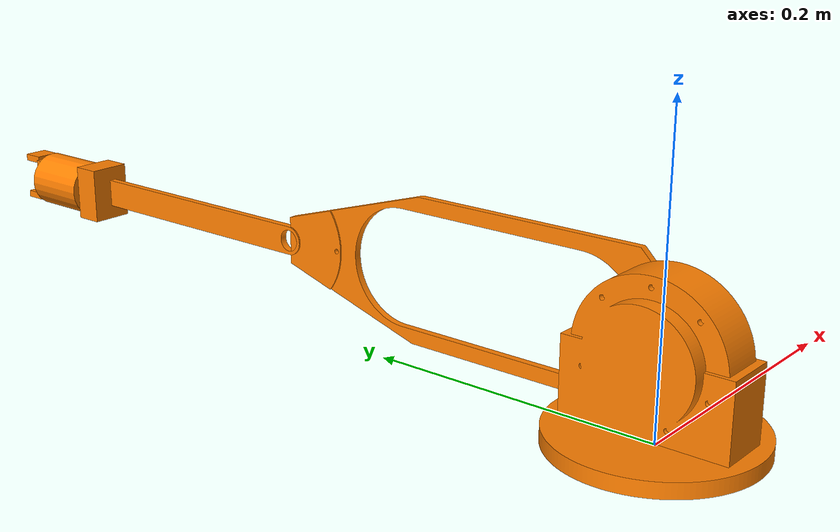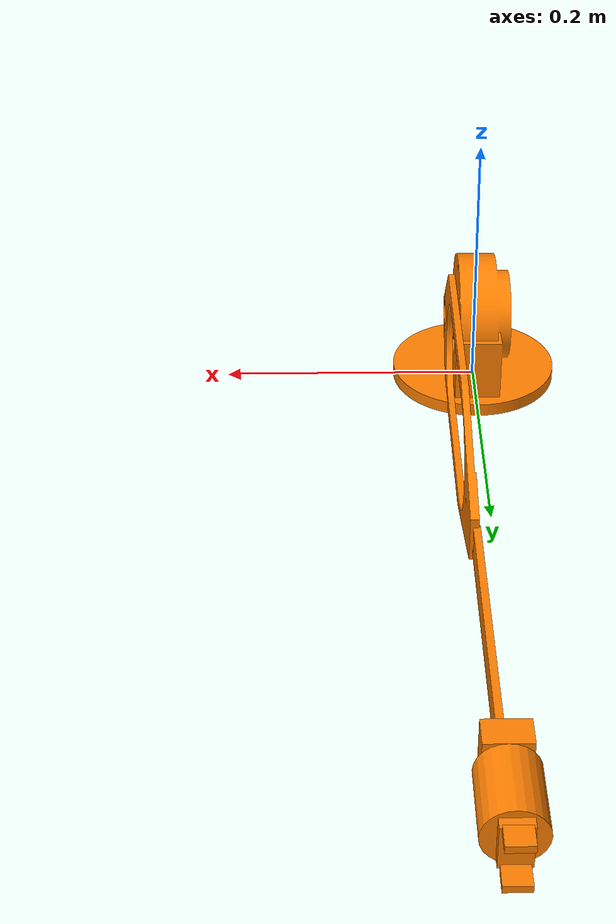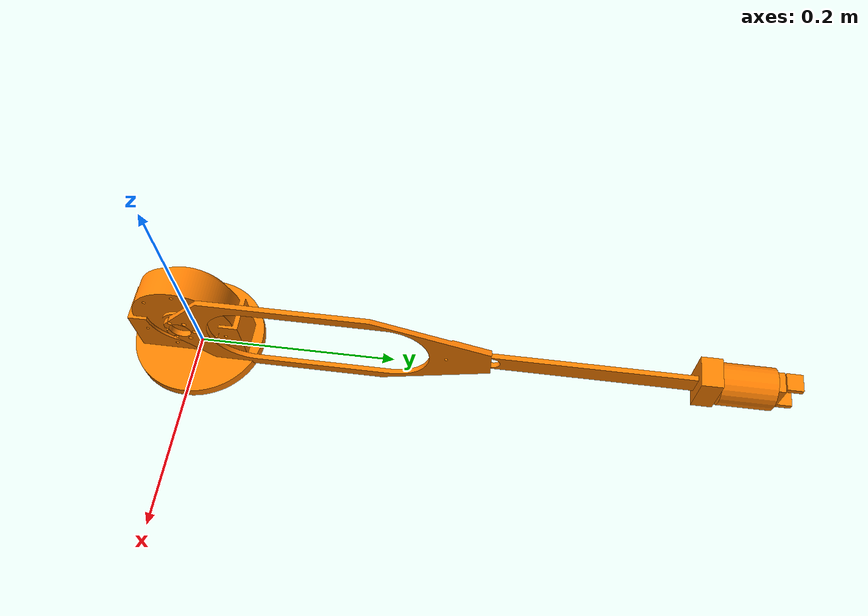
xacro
<?xml version="1.0" encoding="UTF-8"?>
<robot xmlns:xacro="http://www.ros.org/wiki/xacro" name="robot_arm">

  <material name="orange">
    <color rgba="1.0 0.5 0.0 1.0"/>
  </material>

  <link name="world"></link>

  <joint name="base_joint" type="revolute">
    <origin xyz="0 0 0" rpy="0 0 0"/>
    <parent link="world"/>
    <child link="base_link"/>
    <axis xyz="0 0 1"/>
    <limit lower="0" upper="3.14159" effort="100" velocity="0.5"/>
  </joint>

  <link name="base_link">
    <visual>
      <origin xyz="0.0 0.0 0.0" rpy="0.0 0.0 0.0"/>
      <geometry>
        <mesh filename="package://arm_description/meshes/base_link.dae" scale="1.0 1.0 1.0"/>
      </geometry>
      <material name="orange"></material>
    </visual>

    <collision>
      <origin xyz="0 0 0" rpy="0 0 0"/>
      <geometry>
        <mesh filename="package://arm_description/meshes/base_link.dae" scale="1.0 1.0 1.0"/>
      </geometry>

    </collision>

    <inertial>
      <origin xyz="0.0 0.0 0.0" rpy="0.0 0.0 0.0"/>
      <mass value="0.0723"/>
      <inertia ixx="0.01" ixy="0.0" ixz="0.0" iyy="0.01" iyz="0.0" izz="0.01"/>

    </inertial>

  </link>

  <joint name="joint1" type="revolute">
    <origin xyz="0.017 0 0.055" rpy="0 0 0"/>  <!-- Adjust height based on your base -->
    <parent link="base_link"/>
    <child link="link1"/>
    <axis xyz="1 0 0"/>  <!-- Rotation around Z-axis (vertical) -->
    <limit lower="0" upper="1.570796327" effort="100" velocity="1.0"/>

  </joint>

  <link name="link1">
    <visual>
      <origin xyz="0 0 0" rpy="0 0 0"/>  <!-- Position relative to joint -->
      <geometry>
        <mesh filename="package://arm_description/meshes/link_1.dae"/>
      </geometry>
      <material name="orange"/>
    </visual>

    <collision>
      <origin xyz="0 0 0" rpy="0 0 0"/>
      <geometry>
        <mesh filename="package://arm_description/meshes/link_1.dae"/>
      </geometry>
    </collision>

    <inertial>
      <origin xyz="0 0 0" rpy="0 0 0"/>
      <mass value="0.020"/>
      <inertia ixx="0.01" ixy="0" ixz="0" iyy="0.01" iyz="0" izz="0.01"/>
    </inertial>
  </link>

  <joint name="joint2" type="revolute">
    <origin xyz="0 0.3 0" rpy="0 0 0"/>
    <parent link="link1"/>
    <child link="link2"/>
    <axis xyz="1 0 0"/>  <!-- Rotation around Z-axis (vertical) -->
    <limit lower="-2.5" upper="2.5" effort="100" velocity="1.0"/>

  </joint>

  <link name="link2">
    <visual>
      <origin xyz="0 0 0" rpy="0 0 0"/>  <!-- Position relative to joint -->
      <geometry>
        <mesh filename="package://arm_description/meshes/link_2.dae"/>
      </geometry>
      <material name="orange"/>
    </visual>

    <collision>
      <origin xyz="0 0 0" rpy="0 0 0"/>
      <geometry>
        <mesh filename="package://arm_description/meshes/link_2.dae"/>
      </geometry>
    </collision>

    <inertial>
      <origin xyz="0 0 0" rpy="0 0 0"/>
      <mass value="0.020"/>
      <inertia ixx="0.01" ixy="0" ixz="0" iyy="0.01" iyz="0" izz="0.01"/>
    </inertial>
  </link>

  <joint name="wrist_pitch" type="revolute">
    <origin xyz="0 0.2 0" rpy="0 0 0"/>  <!-- At end of link2 -->
    <parent link="link2"/>
    <child link="wrist_pitch_link"/>
    <axis xyz="1 0 0"/>  <!-- Rotation around Y-axis for pitch -->
    <limit lower="-1.57" upper="1.57" effort="50" velocity="2.0"/>
  </joint>

  <!-- Wrist Pitch Link -->
  <link name="wrist_pitch_link">
    <visual>
      <origin xyz="0 0 0" rpy="0 0 0"/>
      <geometry>
        <box size="0.03 0.02 0.04"/>  <!-- Small rectangular housing -->
      </geometry>
      <material name="orange"/>
    </visual>

    <collision>
      <origin xyz="0 0 0" rpy="0 0 0"/>
      <geometry>
        <box size="0.03 0.02 0.04"/>
      </geometry>
    </collision>

    <inertial>
      <origin xyz="0 0 0" rpy="0 0 0"/>
      <mass value="0.1"/>
      <inertia ixx="0.001" ixy="0" ixz="0" iyy="0.001" iyz="0" izz="0.001"/>
    </inertial>
  </link>

    <!-- Wrist Roll Joint -->
  <joint name="wrist_roll" type="revolute">
    <origin xyz="0 0.035  0" rpy="-1.57 0 0"/>  <!-- Forward from wrist pitch -->
    <parent link="wrist_pitch_link"/>
    <child link="wrist_roll_link"/>
    <axis xyz="0 0 1"/>  <!-- Rotation around X-axis for roll -->
    <limit lower="-3.14" upper="3.14" effort="30" velocity="3.0"/>
  </joint>

  <!-- Wrist Roll Link (End Effector Mount) -->
  <link name="wrist_roll_link">
    <visual>
      <origin xyz="0 0 0" rpy="0 0 0"/>  <!-- Rotate to make cylinder along X -->
      <geometry>
        <cylinder radius="0.02" length="0.05"/>  <!-- Small cylinder -->
      </geometry>
      <material name="orange"/>
    </visual>

    <collision>
      <origin xyz="0 0 0" rpy="0 0 0"/>
      <geometry>
        <cylinder radius="0.02" length="0.05"/>
      </geometry>
    </collision>

    <inertial>
      <origin xyz="0 0 0" rpy="0 0 0"/>
      <mass value="0.05"/>
      <inertia ixx="0.0005" ixy="0" ixz="0" iyy="0.0005" iyz="0" izz="0.0005"/>
    </inertial>
  </link>

    <!-- Gripper Base Joint -->
  <joint name="gripper_base_joint" type="fixed">
    <origin xyz="0 0 0" rpy="0 0 0"/>
    <parent link="wrist_roll_link"/>
    <child link="gripper_base"/>
  </joint>

  <!-- Gripper Base Link -->
  <link name="gripper_base">
    <visual>
      <origin xyz="0 0 0.025" rpy="0 0 0"/>
      <geometry>
        <box size="0.02 0.03 0.015"/>
      </geometry>
      <material name="orange"/>
    </visual>
    <collision>
      <origin xyz="0 0 0" rpy="0 0 0"/>
      <geometry>
        <box size="0.02 0.03 0.015"/>
      </geometry>
    </collision>
    <inertial>
      <origin xyz="0 0 0" rpy="0 0 0"/>
      <mass value="0.05"/>
      <inertia ixx="0.0001" ixy="0" ixz="0" iyy="0.0001" iyz="0" izz="0.0001"/>
    </inertial>
  </link>

  <!-- Left Gripper Finger Joint -->
  <joint name="left_gripper_joint" type="prismatic">
    <origin xyz="0 -0.015 0.04" rpy="0 0 0"/>
    <parent link="gripper_base"/>
    <child link="left_gripper_finger"/>
    <axis xyz="0 1 0"/>
    <limit lower="0.0" upper="0.01" effort="10" velocity="0.1"/>
  </joint>

  <!-- Left Gripper Finger Link -->
  <link name="left_gripper_finger">
    <visual>
      <origin xyz="0 0 0" rpy="0 0 0"/>
      <geometry>
        <box size="0.017 0.005 0.015"/>
      </geometry>
      <material name="orange"/>
    </visual>
    <collision>
      <origin xyz="0 0 0" rpy="0 0 0"/>
      <geometry>
        <box size="0.017 0.005 0.015"/>
      </geometry>
    </collision>
    <inertial>
      <origin xyz="0 0 0" rpy="0 0 0"/>
      <mass value="0.01"/>
      <inertia ixx="0.00001" ixy="0" ixz="0" iyy="0.00001" iyz="0" izz="0.00001"/>
    </inertial>
  </link>

  <!-- Right Gripper Finger Joint -->
  <joint name="right_gripper_joint" type="prismatic">
    <origin xyz="0 0.015 0.04" rpy="0 0 0"/>
    <parent link="gripper_base"/>
    <child link="right_gripper_finger"/>
    <axis xyz="0 -1 0"/>
    <limit lower="0.0" upper="0.01" effort="10" velocity="0.1"/>
    <mimic joint="left_gripper_joint" multiplier="1.0"/>
  </joint>

  <!-- Right Gripper Finger Link -->
  <link name="right_gripper_finger">
    <visual>
      <origin xyz="0 0 0" rpy="0 0 0"/>
      <geometry>
        <box size="0.017 0.005 0.015"/>
      </geometry>
      <material name="orange"/>
    </visual>
    <collision>
      <origin xyz="0 0 0" rpy="0 0 0"/>
      <geometry>
        <box size="0.017 0.005 0.015"/>
      </geometry>
    </collision>
    <inertial>
      <origin xyz="0 0 0" rpy="0 0 0"/>
      <mass value="0.01"/>
      <inertia ixx="0.00001" ixy="0" ixz="0" iyy="0.00001" iyz="0" izz="0.00001"/>
    </inertial>
  </link>

</robot>
